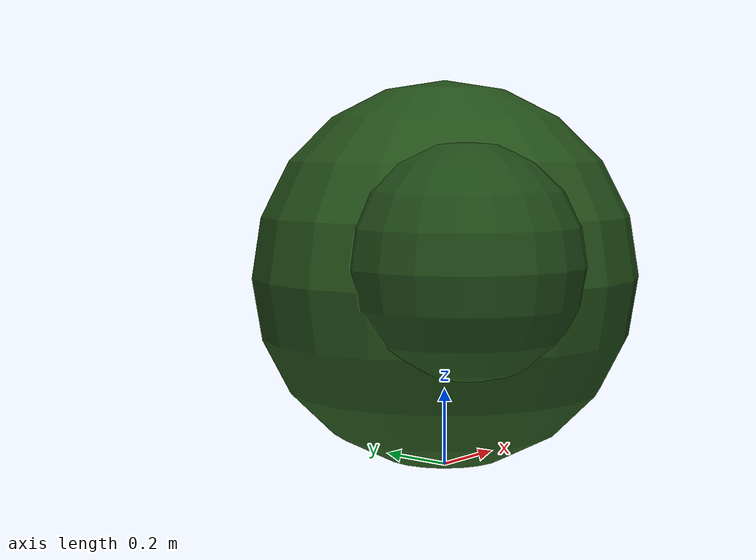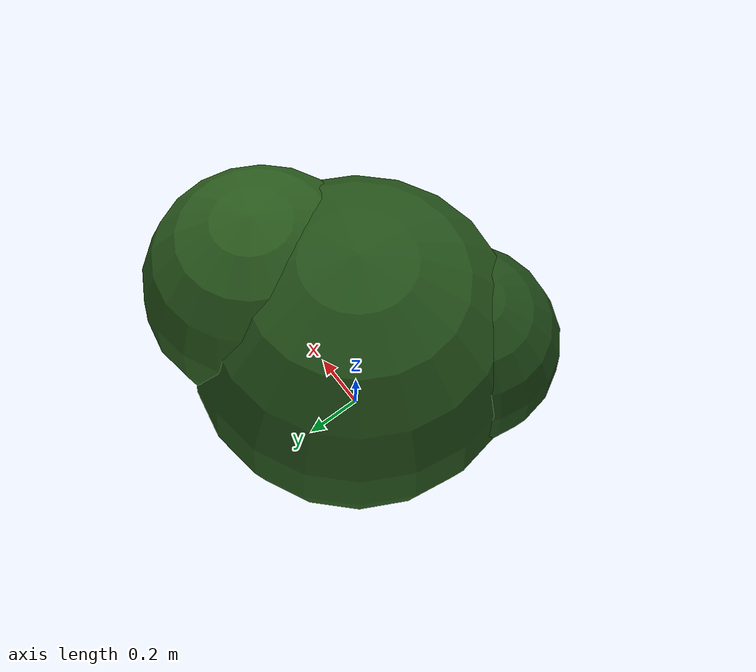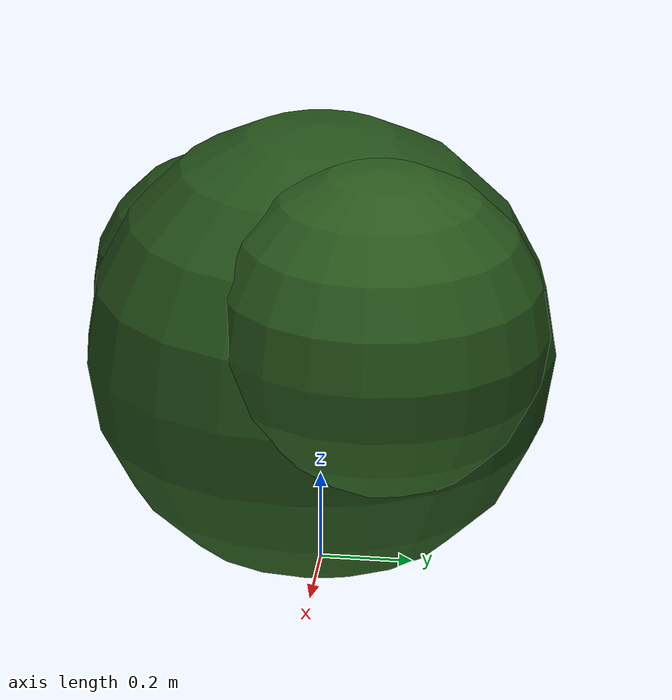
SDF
<?xml version="1.0"?>
<sdf version="1.10"><model name="bush"><static>false</static><link name="bush">
  <inertial><mass>1.0</mass><inertia><ixx>0.1</ixx><iyy>0.1</iyy><izz>0.1</izz></inertia></inertial>
  <collision name="collision"><pose>0 0 0.5 0 0 0</pose><geometry><sphere><radius>0.55</radius></sphere></geometry><surface><friction><ode><mu>1.3</mu><mu2>1.1</mu2></ode></friction></surface></collision>
  <visual name="core"><pose>0 0 0.5 0 0 0</pose><geometry><sphere><radius>0.5</radius></sphere></geometry><material><diffuse>0.14 0.32 0.10 1</diffuse></material></visual>
  <visual name="lobe_a"><pose>0.25 0.15 0.65 0 0 0</pose><geometry><sphere><radius>0.35</radius></sphere></geometry><material><diffuse>0.16 0.35 0.11 1</diffuse></material></visual>
  <visual name="lobe_b"><pose>-0.2 -0.22 0.55 0 0 0</pose><geometry><sphere><radius>0.3</radius></sphere></geometry><material><diffuse>0.12 0.29 0.09 1</diffuse></material></visual>
</link></model></sdf>
